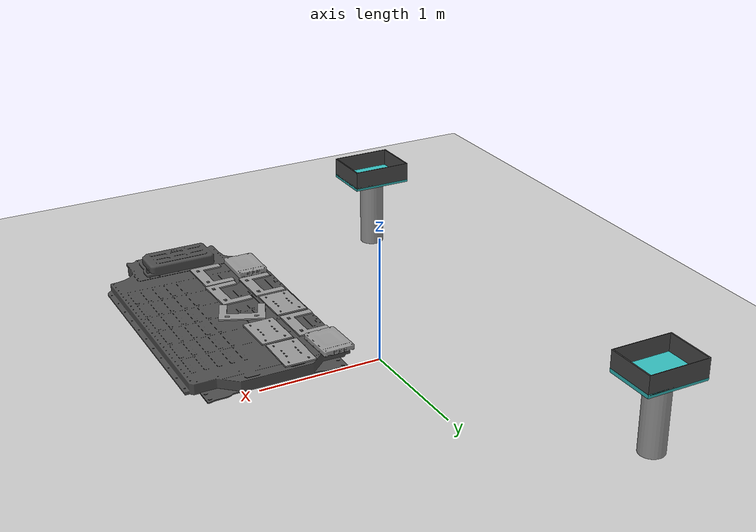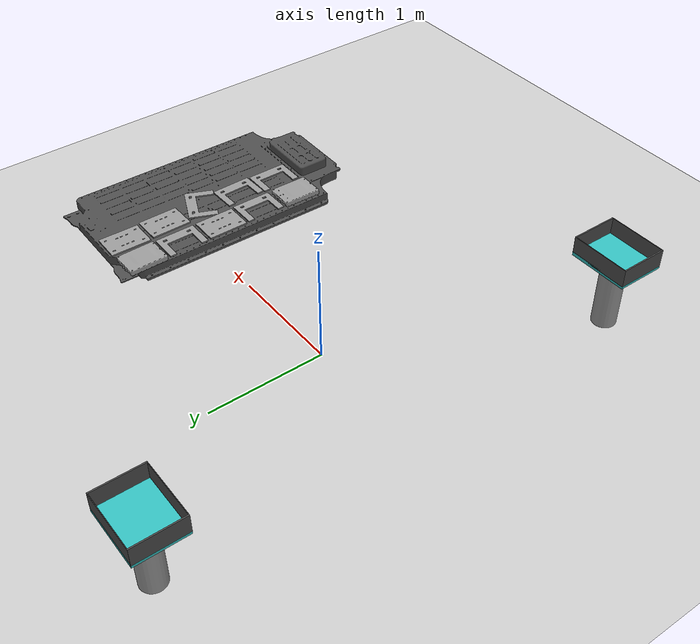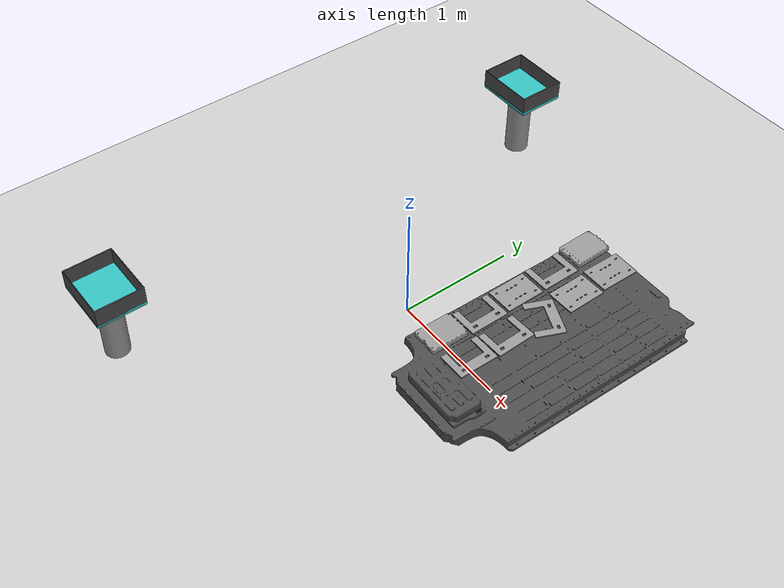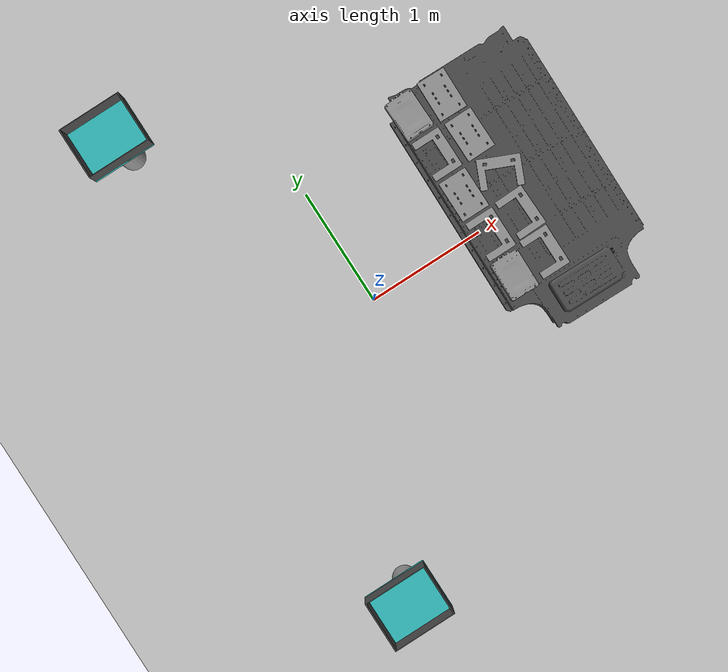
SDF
<sdf version="1.6">
 <world name="default">
  <model name="ground_plane">
   <static>1</static>
   <link name="link">
    <collision name="collision">
     <geometry><plane><normal>0 0 1</normal><size>100 100</size></plane></geometry>
     <surface><friction><ode><mu>100</mu><mu2>50</mu2></ode></friction></surface>
    </collision>
    <visual name="visual">
     <cast_shadows>0</cast_shadows>
     <geometry><plane><normal>0 0 1</normal><size>100 100</size></plane></geometry>
     <material>
      <script><uri>file://media/materials/scripts/gazebo.material</uri><name>PR2/Grey3</name></script>
     </material>
    </visual>
   </link>
  </model>
  <model name="tesla_battery">
   <static>1</static>
   <link name="link0">
    <collision name="collision">
     <pose>0 0.15 -0.05445 0 -0 0</pose>
     <geometry><box><size>1 1.9 0.12</size></box></geometry>
     <surface><friction><ode><mu>1</mu><mu2>1</mu2></ode></friction></surface>
    </collision>
    <visual name="visual">
     <geometry><mesh><uri>model://tesla_battery_v2/meshes/tesla_batteryv2.dae</uri></mesh></geometry>
     <material>
      <script><uri>file://media/materials/scripts/gazebo.material</uri><name>Gazebo/DarkGrey</name></script>
     </material>
    </visual>
   </link>
   <pose>1.3153 -0.001845 0.8 0 -0 0</pose>
  </model>
  <model name="tesla_battery_support">
   <static>1</static>
   <link name="link0">
    <collision name="collision"><geometry><box><size>0.7 2.8 0.5</size></box></geometry></collision>
   </link>
   <pose>1.3 0 0.25 0 -0 0</pose>
  </model>
  <model name="bin_1">
   <static>1</static>
   <link name="column_link">
    <collision name="column">
     <pose>0 0 0.3 0 -0 0</pose>
     <geometry><box><size>0.4 0.5 0.6</size></box></geometry>
     <surface><friction><ode><mu>0.6</mu><mu2>0.6</mu2></ode></friction></surface>
    </collision>
    <visual name="column">
     <pose>0 0 0.3 0 -0 0</pose>
     <geometry><cylinder><radius>0.1</radius><length>0.6</length></cylinder></geometry>
     <material>
      <script><uri>file://media/materials/scripts/gazebo.material</uri><name>PR2/Grey4</name></script>
     </material>
    </visual>
   </link>
   <joint name="column2table" type="revolute">
    <parent>column_link</parent>
    <child>table_link</child>
    <pose>0 0 0.3 0 -0 0</pose>
   </joint>
   <link name="table_link">
    <collision name="surface">
     <pose>0 0 0.6 0 -0 0</pose>
     <geometry><box><size>0.5 0.4 0.03</size></box></geometry>
     <surface><friction><ode><mu>0.6</mu><mu2>0.6</mu2></ode></friction></surface>
    </collision>
    <visual name="surface">
     <pose>0 0 0.6 0 -0 0</pose>
     <geometry><box><size>0.5 0.4 0.03</size></box></geometry>
     <material>
      <script><uri>file://media/materials/scripts/gazebo.material</uri><name>Gazebo/Turquoise</name></script>
     </material>
    </visual>
   </link>
   <joint name="table2bin" type="prismatic">
    <parent>table_link</parent>
    <child>bin_link</child>
    <pose>0 0 1 0 -0 0</pose>
    <axis>
     <xyz>0 0 1</xyz>
     <use_parent_model_frame>0</use_parent_model_frame>
     <limit><lower>-1e+16</lower><upper>1e+16</upper></limit>
     <dynamics><spring_reference>0</spring_reference><spring_stiffness>0</spring_stiffness></dynamics>
    </axis>
   </joint>
   <link name="bin_link">
    <collision name="bin">
     <pose>0 0 0.68 0 -0 0</pose>
     <geometry><mesh><uri>model://table_bin/meshes/big_bin.stl</uri></mesh></geometry>
    </collision>
    <visual name="bin">
     <pose>0 0 0.68 0 -0 0</pose>
     <geometry><mesh><uri>model://table_bin/meshes/big_bin.dae</uri></mesh></geometry>
     <material>
      <script><uri>file://media/materials/scripts/gazebo.material</uri><name>Gazebo/DarkGrey</name></script>
     </material>
    </visual>
   </link>
   <pose>-1 2 0 0 -0 0</pose>
  </model>
  <model name="bin_2">
   <static>1</static>
   <link name="column_link">
    <collision name="column">
     <pose>0 0 0.3 0 -0 0</pose>
     <geometry><box><size>0.4 0.5 0.6</size></box></geometry>
     <surface><friction><ode><mu>0.6</mu><mu2>0.6</mu2></ode></friction></surface>
    </collision>
    <visual name="column">
     <pose>0 0 0.3 0 -0 0</pose>
     <geometry><cylinder><radius>0.1</radius><length>0.6</length></cylinder></geometry>
     <material>
      <script><uri>file://media/materials/scripts/gazebo.material</uri><name>PR2/Grey4</name></script>
     </material>
    </visual>
   </link>
   <joint name="column2table" type="revolute">
    <parent>column_link</parent>
    <child>table_link</child>
    <pose>0 0 0.3 0 -0 0</pose>
   </joint>
   <link name="table_link">
    <collision name="surface">
     <pose>0 0 0.6 0 -0 0</pose>
     <geometry><box><size>0.5 0.4 0.03</size></box></geometry>
     <surface><friction><ode><mu>0.6</mu><mu2>0.6</mu2></ode></friction></surface>
    </collision>
    <visual name="surface">
     <pose>0 0 0.6 0 -0 0</pose>
     <geometry><box><size>0.5 0.4 0.03</size></box></geometry>
     <material>
      <script><uri>file://media/materials/scripts/gazebo.material</uri><name>Gazebo/Turquoise</name></script>
     </material>
    </visual>
   </link>
   <joint name="table2bin" type="prismatic">
    <parent>table_link</parent>
    <child>bin_link</child>
    <pose>0 0 1 0 -0 0</pose>
    <axis>
     <xyz>0 0 1</xyz>
     <use_parent_model_frame>0</use_parent_model_frame>
     <limit><lower>-1e+16</lower><upper>1e+16</upper></limit>
     <dynamics><spring_reference>0</spring_reference><spring_stiffness>0</spring_stiffness></dynamics>
    </axis>
   </joint>
   <link name="bin_link">
    <collision name="bin">
     <pose>0 0 0.68 0 -0 0</pose>
     <geometry><mesh><uri>model://table_bin/meshes/big_bin.stl</uri></mesh></geometry>
    </collision>
    <visual name="bin">
     <pose>0 0 0.68 0 -0 0</pose>
     <geometry><mesh><uri>model://table_bin/meshes/big_bin.dae</uri></mesh></geometry>
     <material>
      <script><uri>file://media/materials/scripts/gazebo.material</uri><name>Gazebo/DarkGrey</name></script>
     </material>
    </visual>
   </link>
   <pose>-1 -2 0 0 -0 0</pose>
  </model>
  <model name="leaf1">
   <static>0</static>
   <link name="leaf_cell_link">
    <collision name="collision">
     <geometry><box><size>0.2228 0.3149 0.035</size></box></geometry>
     <surface><friction><ode><mu>1</mu><mu2>1</mu2></ode></friction></surface>
    </collision>
    <visual name="visual">
     <geometry><mesh><uri>model://leaf_cell/meshes/leaf_cell.dae</uri></mesh></geometry>
     <material>
      <script><uri>file://media/materials/scripts/gazebo.material</uri><name>Gazebo/Grey</name></script>
     </material>
    </visual>
    <inertial>
     <pose>0 0 0 0 0 -1.5707</pose>
     <mass>0.1</mass>
     <inertia>
      <ixx>0.000539835</ixx>
      <iyy>0.00075853</iyy>
      <izz>0.0012813</izz>
      <ixy>0</ixy>
      <ixz>0</ixz>
      <iyz>0</iyz>
     </inertia>
    </inertial>
   </link>
   <pose>0.8789 0.932612 0.823038 7.8e-05 -0 0.018268</pose>
  </model>
  <model name="plate_a_1">
   <static>0</static>
   <link name="link0">
    <collision name="collision">
     <geometry><mesh><uri>model://plate_a/meshes/plate_a_centroid.stl</uri></mesh></geometry>
     <surface><friction><ode><mu>0.99</mu><mu2>0.99</mu2></ode></friction></surface>
    </collision>
    <visual name="visual">
     <geometry><mesh><uri>model://plate_a/meshes/plate_a_centroid.dae</uri></mesh></geometry>
     <material>
      <script><uri>file://media/materials/scripts/gazebo.material</uri><name>PR2/Grey1</name></script>
     </material>
    </visual>
    <inertial>
     <mass>0.1</mass>
     <inertia>
      <ixx>0.00082718</ixx>
      <ixy>0</ixy>
      <ixz>0</ixz>
      <iyy>0.00043403</iyy>
      <iyz>0</iyz>
      <izz>0.00125955</izz>
     </inertia>
    </inertial>
   </link>
   <pose>0.950893 0.593611 0.810545 6e-05 -1e-05 0.001273</pose>
  </model>
  <model name="leaf2">
   <static>0</static>
   <link name="leaf_cell_link">
    <collision name="collision">
     <geometry><box><size>0.2228 0.3149 0.035</size></box></geometry>
     <surface><friction><ode><mu>1</mu><mu2>1</mu2></ode></friction></surface>
    </collision>
    <visual name="visual">
     <geometry><mesh><uri>model://leaf_cell/meshes/leaf_cell.dae</uri></mesh></geometry>
     <material>
      <script><uri>file://media/materials/scripts/gazebo.material</uri><name>Gazebo/Grey</name></script>
     </material>
    </visual>
    <inertial>
     <pose>0 0 0 0 0 -1.5707</pose>
     <mass>0.1</mass>
     <inertia>
      <ixx>0.000539835</ixx>
      <iyy>0.00075853</iyy>
      <izz>0.0012813</izz>
      <ixy>0</ixy>
      <ixz>0</ixz>
      <iyz>0</iyz>
     </inertia>
    </inertial>
   </link>
   <pose>0.892875 -0.406849 0.82305 0 0 -0.017489</pose>
  </model>
  <model name="plate_b_1">
   <static>0</static>
   <link name="link0">
    <collision name="collision">
     <geometry><box><size>0.2228 0.3149 0.01</size></box></geometry>
     <surface><friction><ode><mu>0.99</mu><mu2>0.99</mu2></ode></friction></surface>
    </collision>
    <visual name="visual">
     <geometry><mesh><uri>model://plate_b/meshes/plate_b.dae</uri></mesh></geometry>
     <material>
      <script><uri>file://media/materials/scripts/gazebo.material</uri><name>Gazebo/Grey</name></script>
     </material>
    </visual>
    <inertial>
     <mass>0.1</mass>
     <inertia>
      <ixx>0.00082718</ixx>
      <ixy>0</ixy>
      <ixz>0</ixz>
      <iyy>0.00043403</iyy>
      <iyz>0</iyz>
      <izz>0.00125955</izz>
     </inertia>
    </inertial>
   </link>
   <pose>0.902235 0.253445 0.81055 0 0 -0.000794</pose>
  </model>
  <model name="plate_a_2">
   <static>0</static>
   <link name="link0">
    <collision name="collision">
     <geometry><mesh><uri>model://plate_a/meshes/plate_a_centroid.stl</uri></mesh></geometry>
     <surface><friction><ode><mu>0.99</mu><mu2>0.99</mu2></ode></friction></surface>
    </collision>
    <visual name="visual">
     <geometry><mesh><uri>model://plate_a/meshes/plate_a_centroid.dae</uri></mesh></geometry>
     <material>
      <script><uri>file://media/materials/scripts/gazebo.material</uri><name>PR2/Grey1</name></script>
     </material>
    </visual>
    <inertial>
     <mass>0.1</mass>
     <inertia>
      <ixx>0.00082718</ixx>
      <ixy>0</ixy>
      <ixz>0</ixz>
      <iyy>0.00043403</iyy>
      <iyz>0</iyz>
      <izz>0.00125955</izz>
     </inertia>
    </inertial>
   </link>
   <pose>0.962637 -0.082077 0.810545 6.1e-05 -8e-06 0.001185</pose>
  </model>
  <model name="plate_a_1_clone">
   <static>0</static>
   <link name="link0">
    <collision name="collision">
     <geometry><mesh><uri>model://plate_a/meshes/plate_a_centroid.stl</uri></mesh></geometry>
     <surface><friction><ode><mu>0.99</mu><mu2>0.99</mu2></ode></friction></surface>
    </collision>
    <visual name="visual">
     <geometry><mesh><uri>model://plate_a/meshes/plate_a_centroid.dae</uri></mesh></geometry>
     <material>
      <script><uri>file://media/materials/scripts/gazebo.material</uri><name>PR2/Grey1</name></script>
     </material>
    </visual>
    <inertial>
     <mass>0.1</mass>
     <inertia>
      <ixx>0.00082718</ixx>
      <ixy>0</ixy>
      <ixz>0</ixz>
      <iyy>0.00043403</iyy>
      <iyz>0</iyz>
      <izz>0.00125955</izz>
     </inertia>
    </inertial>
   </link>
   <pose>1.22124 -0.064447 0.81055 0 -0 0.025336</pose>
  </model>
  <model name="plate_a_1_clone_clone">
   <static>0</static>
   <link name="link0">
    <collision name="collision">
     <geometry><mesh><uri>model://plate_a/meshes/plate_a_centroid.stl</uri></mesh></geometry>
     <surface><friction><ode><mu>0.99</mu><mu2>0.99</mu2></ode></friction></surface>
    </collision>
    <visual name="visual">
     <geometry><mesh><uri>model://plate_a/meshes/plate_a_centroid.dae</uri></mesh></geometry>
     <material>
      <script><uri>file://media/materials/scripts/gazebo.material</uri><name>PR2/Grey1</name></script>
     </material>
    </visual>
    <inertial>
     <mass>0.1</mass>
     <inertia>
      <ixx>0.00082718</ixx>
      <ixy>0</ixy>
      <ixz>0</ixz>
      <iyy>0.00043403</iyy>
      <iyz>0</iyz>
      <izz>0.00125955</izz>
     </inertia>
    </inertial>
   </link>
   <pose>1.21441 -0.389789 0.810545 6.2e-05 -6e-06 -0.003599</pose>
  </model>
  <model name="plate_b_1_clone">
   <static>0</static>
   <link name="link0">
    <collision name="collision">
     <geometry><box><size>0.2228 0.3149 0.01</size></box></geometry>
     <surface><friction><ode><mu>0.99</mu><mu2>0.99</mu2></ode></friction></surface>
    </collision>
    <visual name="visual">
     <geometry><mesh><uri>model://plate_b/meshes/plate_b.dae</uri></mesh></geometry>
     <material>
      <script><uri>file://media/materials/scripts/gazebo.material</uri><name>Gazebo/Grey</name></script>
     </material>
    </visual>
    <inertial>
     <mass>0.1</mass>
     <inertia>
      <ixx>0.00082718</ixx>
      <ixy>0</ixy>
      <ixz>0</ixz>
      <iyy>0.00043403</iyy>
      <iyz>0</iyz>
      <izz>0.00125955</izz>
     </inertia>
    </inertial>
   </link>
   <pose>1.16487 0.586201 0.810536 -9.1e-05 -0 0.008517</pose>
  </model>
  <model name="plate_b_1_clone_clone">
   <static>0</static>
   <link name="link0">
    <collision name="collision">
     <geometry><box><size>0.2228 0.3149 0.01</size></box></geometry>
     <surface><friction><ode><mu>0.99</mu><mu2>0.99</mu2></ode></friction></surface>
    </collision>
    <visual name="visual">
     <geometry><mesh><uri>model://plate_b/meshes/plate_b.dae</uri></mesh></geometry>
     <material>
      <script><uri>file://media/materials/scripts/gazebo.material</uri><name>Gazebo/Grey</name></script>
     </material>
    </visual>
    <inertial>
     <mass>0.1</mass>
     <inertia>
      <ixx>0.00082718</ixx>
      <ixy>0</ixy>
      <ixz>0</ixz>
      <iyy>0.00043403</iyy>
      <iyz>0</iyz>
      <izz>0.00125955</izz>
     </inertia>
    </inertial>
   </link>
   <pose>1.15266 0.925296 0.810537 0 0.000113 -0.017222</pose>
  </model>
  <model name="plate_a_2_clone">
   <static>0</static>
   <link name="link0">
    <collision name="collision">
     <geometry><mesh><uri>model://plate_a/meshes/plate_a_centroid.stl</uri></mesh></geometry>
     <surface><friction><ode><mu>0.99</mu><mu2>0.99</mu2></ode></friction></surface>
    </collision>
    <visual name="visual">
     <geometry><mesh><uri>model://plate_a/meshes/plate_a_centroid.dae</uri></mesh></geometry>
     <material>
      <script><uri>file://media/materials/scripts/gazebo.material</uri><name>PR2/Grey1</name></script>
     </material>
    </visual>
    <inertial>
     <mass>0.1</mass>
     <inertia>
      <ixx>0.00082718</ixx>
      <ixy>0</ixy>
      <ixz>0</ixz>
      <iyy>0.00043403</iyy>
      <iyz>0</iyz>
      <izz>0.00125955</izz>
     </inertia>
    </inertial>
   </link>
   <pose>1.22422 0.297113 0.810545 6.2e-05 -6e-06 1.15629</pose>
  </model>
 </world>
</sdf>
